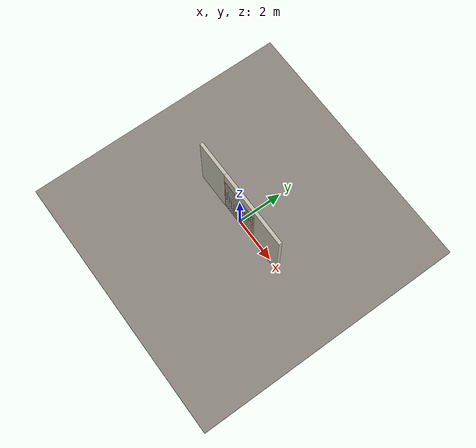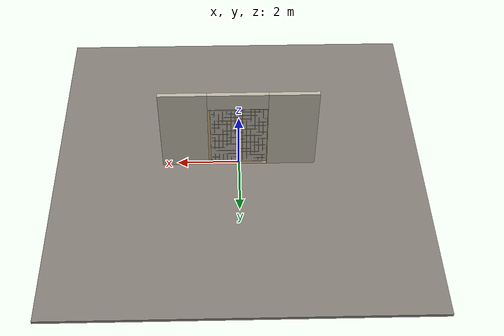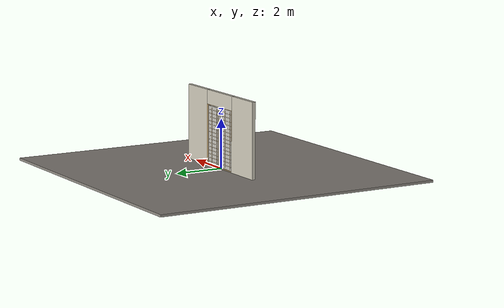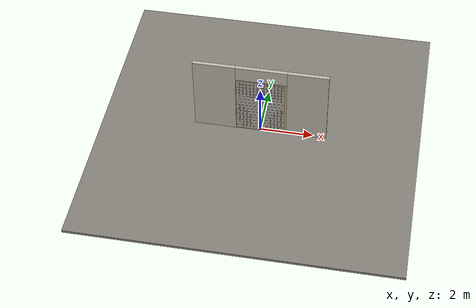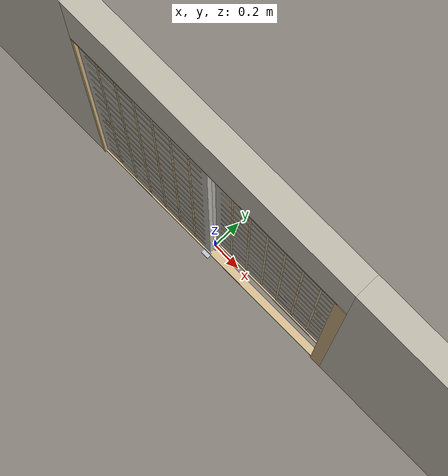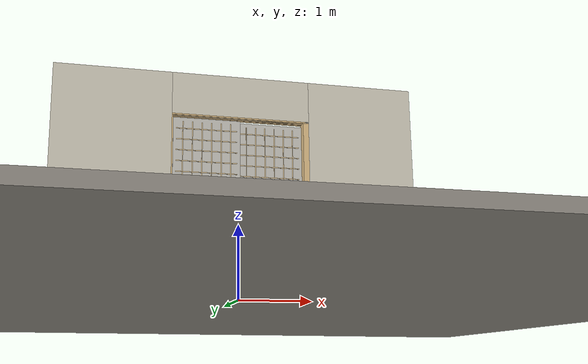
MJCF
<?xml version="1.0" ?>
<mujoco model="db0401_sliding_bypass_simple">
  <compiler angle="radian" meshdir="../../hardware" texturedir="../../textures" autolimits="true" inertiafromgeom="false"/>
  <option timestep="0.002" integrator="implicitfast" cone="elliptic" impratio="10" noslip_iterations="3">
    <flag multiccd="enable"/>
  </option>
  <size memory="16M"/>
  <default>
    <geom condim="4" solref="0.005 1" solimp="0.95 0.99 0.001"/>
    <joint solreflimit="0.005 1" solimplimit="0.95 0.99 0.001"/>
    <tendon solreflimit="0.005 1"/>
    <equality solref="0.002 1"/>
  </default>
  <visual>
    <headlight ambient="0.4 0.4 0.4" diffuse="0.7 0.7 0.7" specular="0.2 0.2 0.2"/>
    <quality shadowsize="4096"/>
    <map znear="0.01" zfar="60"/>
  </visual>
  <asset>
    <material name="mat_floor" rgba="0.55 0.53 0.5 1" specular="0.2" shininess="0.15" reflectance="0"/>
    <material name="mat_wall" rgba="0.78 0.76 0.7 1" specular="0.2" shininess="0.1" reflectance="0"/>
    <material name="mat_frame" rgba="0.82 0.7 0.5 1" specular="0.2" shininess="0.45" reflectance="0"/>
    <material name="mat_track" rgba="0.8 0.81 0.83 1" specular="0.8" shininess="0.6" reflectance="0.4"/>
    <material name="mat_shikii" rgba="0.88 0.78 0.6 1" specular="0.2" shininess="0.4" reflectance="0"/>
    <material name="mat_leaf_0" rgba="0.74 0.73 0.7 1" specular="0.2" shininess="0.1" reflectance="0"/>
    <material name="mat_kumiko" rgba="0.88 0.78 0.6 1" specular="0.2" shininess="0.4" reflectance="0"/>
    <material name="mat_roller" rgba="0.65 0.66 0.68 1" specular="0.74" shininess="0.5" reflectance="0.36"/>
    <material name="mat_op_hinoki" rgba="0.88 0.78 0.6 1" specular="0.2" shininess="0.4" reflectance="0"/>
    <material name="mat_leaf_1" rgba="0.74 0.73 0.7 1" specular="0.2" shininess="0.1" reflectance="0"/>
    <material name="mat_hook" rgba="0.75 0.76 0.77 1" specular="0.8" shininess="0.65" reflectance="0.4"/>
    <texture name="skybox" type="skybox" builtin="gradient" rgb1="0.6 0.7 0.85" rgb2="0.9 0.92 0.95" width="256" height="256"/>
  </asset>
  <worldbody>
    <light name="sun" pos="1.5 -2.5 4" dir="-0.3 0.5 -0.8" directional="true" diffuse="0.8 0.8 0.8" specular="0.3 0.3 0.3" castshadow="true"/>
    <light name="fill" pos="-1.5 2.5 3" dir="0.3 -0.5 -0.7" directional="true" diffuse="0.35 0.35 0.4" castshadow="false"/>
    <camera name="robot_view" pos="0 -2.93125 2.05075" xyaxes="1 0 0 0 0.26963 0.962964" fovy="52"/>
    <camera name="far_view" pos="0 2.93125 2.05075" xyaxes="-1 0 0 0 -0.26963 0.962964" fovy="52"/>
    <camera name="iso" pos="2.22775 -2.46225 2.51975" xyaxes="0.741536 0.670913 0 -0.242917 0.268487 0.932151" fovy="46"/>
    <camera name="detail_handle" pos="-0.631 -0.855 1.28" xyaxes="0.97561 0.219512 0 -0.070934 0.315262 0.94635" fovy="38"/>
    <geom name="floor" type="box" size="6 6 0.05" pos="0 0 -0.05" material="mat_floor" group="0" contype="1" conaffinity="1" friction="0.8 0.005 0.0001" density="2400"/>
    <geom name="wall_left" type="box" size="0.7885 0.0725 1.53" pos="-1.7115 0 1.53" material="mat_wall" group="0" contype="1" conaffinity="1" friction="0.6 0.005 0.0001" density="800"/>
    <geom name="wall_right" type="box" size="0.7585 0.0725 1.53" pos="1.7415 0 1.53" material="mat_wall" group="0" contype="1" conaffinity="1" friction="0.6 0.005 0.0001" density="800"/>
    <geom name="wall_header" type="box" size="0.953 0.0725 0.2905" pos="0.03 0 2.7695" material="mat_wall" group="0" contype="1" conaffinity="1" friction="0.6 0.005 0.0001" density="800"/>
    <geom name="jamb_l" type="box" size="0.0095 0.0725 1.23" pos="-0.9135 0 1.23" material="mat_frame" group="0" contype="1" conaffinity="1" friction="0.6 0.005 0.0001" density="300"/>
    <geom name="jamb_head" type="box" size="0.923 0.0725 0.0095" pos="0 0 2.4695" material="mat_frame" group="0" contype="1" conaffinity="1" friction="0.6 0.005 0.0001" density="300"/>
    <geom name="leaf_0_shikii" type="box" size="0.949 0.025 0.012" pos="-0.002 -0.04 0.012" material="mat_shikii" group="0" contype="1" conaffinity="1" friction="0.6 0.005 0.0001" density="2700"/>
    <geom name="leaf_0_kamoi" type="box" size="0.949 0.025 0.03" pos="-0.002 -0.04 2.49" material="mat_shikii" group="0" contype="1" conaffinity="1" friction="0.6 0.005 0.0001" density="410"/>
    <geom name="leaf_1_shikii" type="box" size="0.949 0.025 0.012" pos="0.002 0.04 0.012" material="mat_shikii" group="0" contype="1" conaffinity="1" friction="0.6 0.005 0.0001" density="2700"/>
    <geom name="leaf_1_kamoi" type="box" size="0.949 0.025 0.03" pos="0.002 0.04 2.49" material="mat_shikii" group="0" contype="1" conaffinity="1" friction="0.6 0.005 0.0001" density="410"/>
    <geom name="leaf_0_floor_guide_0_n" type="box" size="0.028 0.004 0.0175" pos="-0.002 -0.06 0.0175" material="mat_track" group="0" contype="1" conaffinity="1" friction="0.6 0.005 0.0001" density="7850"/>
    <geom name="leaf_0_floor_guide_0_n_foot" type="box" size="0.028 0.018 0.002" pos="-0.002 -0.074 0.002" material="mat_track" group="0" contype="1" conaffinity="1" friction="0.6 0.005 0.0001" density="7850"/>
    <geom name="leaf_0_floor_guide_0_p" type="box" size="0.028 0.004 0.0175" pos="-0.002 -0.02 0.0175" material="mat_track" group="0" contype="1" conaffinity="1" friction="0.6 0.005 0.0001" density="7850"/>
    <geom name="leaf_0_floor_guide_0_p_foot" type="box" size="0.028 0.018 0.002" pos="-0.002 -0.006 0.002" material="mat_track" group="0" contype="1" conaffinity="1" friction="0.6 0.005 0.0001" density="7850"/>
    <geom name="leaf_1_floor_guide_0_n" type="box" size="0.028 0.004 0.0175" pos="0.002 0.02 0.0175" material="mat_track" group="0" contype="1" conaffinity="1" friction="0.6 0.005 0.0001" density="7850"/>
    <geom name="leaf_1_floor_guide_0_n_foot" type="box" size="0.028 0.018 0.002" pos="0.002 0.006 0.002" material="mat_track" group="0" contype="1" conaffinity="1" friction="0.6 0.005 0.0001" density="7850"/>
    <geom name="leaf_1_floor_guide_0_p" type="box" size="0.028 0.004 0.0175" pos="0.002 0.06 0.0175" material="mat_track" group="0" contype="1" conaffinity="1" friction="0.6 0.005 0.0001" density="7850"/>
    <geom name="leaf_1_floor_guide_0_p_foot" type="box" size="0.028 0.018 0.002" pos="0.002 0.074 0.002" material="mat_track" group="0" contype="1" conaffinity="1" friction="0.6 0.005 0.0001" density="7850"/>
    <geom name="jamb_latch_0" type="box" size="0.0395 0.0725 1.23" pos="0.9435 0 1.23" material="mat_frame" group="0" contype="1" conaffinity="1" friction="0.6 0.005 0.0001" density="300"/>
    <site name="approach_point" pos="0 -1.5 0" quat="1 0 0 0" size="0.05" rgba="0.2 0.9 0.2 0.5" group="4"/>
    <site name="goal_point" pos="0 1.5 0" quat="1 0 0 0" size="0.05" rgba="0.2 0.9 0.2 0.5" group="4"/>
    <site name="door_plane_center" pos="0 0 1.23" quat="1 0 0 0" size="0.02" rgba="0.2 0.9 0.2 0.5" group="4"/>
    <body name="leaf_0" pos="-0.444 -0.04 0">
      <inertial pos="-0.000084 -0.000004 1.226948" mass="10.825061" quat="0.500016 -0.500007 -0.499994 -0.499983" diaginertia="0.754398026 5.195246272 5.948019254"/>
      <joint name="leaf_0_slide" type="slide" axis="1 0 0" limited="true" range="0 0.868" damping="2.542003" frictionloss="12.756562" armature="0.5"/>
      <geom name="leaf_0_slab" type="box" size="0.457 0.015 1.2" pos="0 0 1.227" material="mat_leaf_0" group="0" contype="1" conaffinity="1" friction="0.3 0.005 0.0001" density="1"/>
      <geom name="leaf_0_kumiko_v1" type="box" size="0.006 0.017 1.15" pos="-0.326429 0 1.227" material="mat_kumiko" group="1" contype="0" conaffinity="0" density="1"/>
      <geom name="leaf_0_kumiko_v2" type="box" size="0.006 0.017 1.15" pos="-0.195857 0 1.227" material="mat_kumiko" group="1" contype="0" conaffinity="0" density="1"/>
      <geom name="leaf_0_kumiko_v3" type="box" size="0.006 0.017 1.15" pos="-0.065286 0 1.227" material="mat_kumiko" group="1" contype="0" conaffinity="0" density="1"/>
      <geom name="leaf_0_kumiko_v4" type="box" size="0.006 0.017 1.15" pos="0.065286 0 1.227" material="mat_kumiko" group="1" contype="0" conaffinity="0" density="1"/>
      <geom name="leaf_0_kumiko_v5" type="box" size="0.006 0.017 1.15" pos="0.195857 0 1.227" material="mat_kumiko" group="1" contype="0" conaffinity="0" density="1"/>
      <geom name="leaf_0_kumiko_v6" type="box" size="0.006 0.017 1.15" pos="0.326429 0 1.227" material="mat_kumiko" group="1" contype="0" conaffinity="0" density="1"/>
      <geom name="leaf_0_kumiko_h1" type="box" size="0.417 0.017 0.006" pos="0 0 0.177" material="mat_kumiko" group="1" contype="0" conaffinity="0" density="1"/>
      <geom name="leaf_0_kumiko_h2" type="box" size="0.417 0.017 0.006" pos="0 0 0.327" material="mat_kumiko" group="1" contype="0" conaffinity="0" density="1"/>
      <geom name="leaf_0_kumiko_h3" type="box" size="0.417 0.017 0.006" pos="0 0 0.477" material="mat_kumiko" group="1" contype="0" conaffinity="0" density="1"/>
      <geom name="leaf_0_kumiko_h4" type="box" size="0.417 0.017 0.006" pos="0 0 0.627" material="mat_kumiko" group="1" contype="0" conaffinity="0" density="1"/>
      <geom name="leaf_0_kumiko_h5" type="box" size="0.417 0.017 0.006" pos="0 0 0.777" material="mat_kumiko" group="1" contype="0" conaffinity="0" density="1"/>
      <geom name="leaf_0_kumiko_h6" type="box" size="0.417 0.017 0.006" pos="0 0 0.927" material="mat_kumiko" group="1" contype="0" conaffinity="0" density="1"/>
      <geom name="leaf_0_kumiko_h7" type="box" size="0.417 0.017 0.006" pos="0 0 1.077" material="mat_kumiko" group="1" contype="0" conaffinity="0" density="1"/>
      <geom name="leaf_0_kumiko_h8" type="box" size="0.417 0.017 0.006" pos="0 0 1.227" material="mat_kumiko" group="1" contype="0" conaffinity="0" density="1"/>
      <geom name="leaf_0_kumiko_h9" type="box" size="0.417 0.017 0.006" pos="0 0 1.377" material="mat_kumiko" group="1" contype="0" conaffinity="0" density="1"/>
      <geom name="leaf_0_kumiko_h10" type="box" size="0.417 0.017 0.006" pos="0 0 1.527" material="mat_kumiko" group="1" contype="0" conaffinity="0" density="1"/>
      <geom name="leaf_0_kumiko_h11" type="box" size="0.417 0.017 0.006" pos="0 0 1.677" material="mat_kumiko" group="1" contype="0" conaffinity="0" density="1"/>
      <geom name="leaf_0_kumiko_h12" type="box" size="0.417 0.017 0.006" pos="0 0 1.827" material="mat_kumiko" group="1" contype="0" conaffinity="0" density="1"/>
      <geom name="leaf_0_kumiko_h13" type="box" size="0.417 0.017 0.006" pos="0 0 1.977" material="mat_kumiko" group="1" contype="0" conaffinity="0" density="1"/>
      <geom name="leaf_0_kumiko_h14" type="box" size="0.417 0.017 0.006" pos="0 0 2.127" material="mat_kumiko" group="1" contype="0" conaffinity="0" density="1"/>
      <geom name="leaf_0_kumiko_h15" type="box" size="0.417 0.017 0.006" pos="0 0 2.277" material="mat_kumiko" group="1" contype="0" conaffinity="0" density="1"/>
      <geom name="leaf_0_pull_n" type="box" size="0.015 0.0005 0.04" pos="-0.367 -0.0155 1" material="mat_op_hinoki" group="1" contype="0" conaffinity="0" density="1000"/>
      <site name="leaf_0_pull_grip_n" pos="-0.367 -0.015 1" quat="1 0 0 0" size="0.012" rgba="0.2 0.9 0.2 0.5" group="4"/>
      <site name="leaf_0_edge_mid" pos="-0.457 0 1.227" quat="1 0 0 0" size="0.02" rgba="0.2 0.9 0.2 0.5" group="4"/>
    </body>
    <body name="leaf_1" pos="0.444 0.04 0">
      <inertial pos="0.000084 -0.000004 1.226948" mass="10.825061" quat="-0.499983 0.499994 0.500007 0.500016" diaginertia="0.754398026 5.195246272 5.948019254"/>
      <joint name="leaf_1_slide" type="slide" axis="-1 0 0" limited="true" range="0 0.868" damping="2.542003" frictionloss="12.756562" armature="0.5"/>
      <geom name="leaf_1_slab" type="box" size="0.457 0.015 1.2" pos="0 0 1.227" material="mat_leaf_1" group="0" contype="1" conaffinity="1" friction="0.3 0.005 0.0001" density="1"/>
      <geom name="leaf_1_kumiko_v1" type="box" size="0.006 0.017 1.15" pos="-0.326429 0 1.227" material="mat_kumiko" group="1" contype="0" conaffinity="0" density="1"/>
      <geom name="leaf_1_kumiko_v2" type="box" size="0.006 0.017 1.15" pos="-0.195857 0 1.227" material="mat_kumiko" group="1" contype="0" conaffinity="0" density="1"/>
      <geom name="leaf_1_kumiko_v3" type="box" size="0.006 0.017 1.15" pos="-0.065286 0 1.227" material="mat_kumiko" group="1" contype="0" conaffinity="0" density="1"/>
      <geom name="leaf_1_kumiko_v4" type="box" size="0.006 0.017 1.15" pos="0.065286 0 1.227" material="mat_kumiko" group="1" contype="0" conaffinity="0" density="1"/>
      <geom name="leaf_1_kumiko_v5" type="box" size="0.006 0.017 1.15" pos="0.195857 0 1.227" material="mat_kumiko" group="1" contype="0" conaffinity="0" density="1"/>
      <geom name="leaf_1_kumiko_v6" type="box" size="0.006 0.017 1.15" pos="0.326429 0 1.227" material="mat_kumiko" group="1" contype="0" conaffinity="0" density="1"/>
      <geom name="leaf_1_kumiko_h1" type="box" size="0.417 0.017 0.006" pos="0 0 0.177" material="mat_kumiko" group="1" contype="0" conaffinity="0" density="1"/>
      <geom name="leaf_1_kumiko_h2" type="box" size="0.417 0.017 0.006" pos="0 0 0.327" material="mat_kumiko" group="1" contype="0" conaffinity="0" density="1"/>
      <geom name="leaf_1_kumiko_h3" type="box" size="0.417 0.017 0.006" pos="0 0 0.477" material="mat_kumiko" group="1" contype="0" conaffinity="0" density="1"/>
      <geom name="leaf_1_kumiko_h4" type="box" size="0.417 0.017 0.006" pos="0 0 0.627" material="mat_kumiko" group="1" contype="0" conaffinity="0" density="1"/>
      <geom name="leaf_1_kumiko_h5" type="box" size="0.417 0.017 0.006" pos="0 0 0.777" material="mat_kumiko" group="1" contype="0" conaffinity="0" density="1"/>
      <geom name="leaf_1_kumiko_h6" type="box" size="0.417 0.017 0.006" pos="0 0 0.927" material="mat_kumiko" group="1" contype="0" conaffinity="0" density="1"/>
      <geom name="leaf_1_kumiko_h7" type="box" size="0.417 0.017 0.006" pos="0 0 1.077" material="mat_kumiko" group="1" contype="0" conaffinity="0" density="1"/>
      <geom name="leaf_1_kumiko_h8" type="box" size="0.417 0.017 0.006" pos="0 0 1.227" material="mat_kumiko" group="1" contype="0" conaffinity="0" density="1"/>
      <geom name="leaf_1_kumiko_h9" type="box" size="0.417 0.017 0.006" pos="0 0 1.377" material="mat_kumiko" group="1" contype="0" conaffinity="0" density="1"/>
      <geom name="leaf_1_kumiko_h10" type="box" size="0.417 0.017 0.006" pos="0 0 1.527" material="mat_kumiko" group="1" contype="0" conaffinity="0" density="1"/>
      <geom name="leaf_1_kumiko_h11" type="box" size="0.417 0.017 0.006" pos="0 0 1.677" material="mat_kumiko" group="1" contype="0" conaffinity="0" density="1"/>
      <geom name="leaf_1_kumiko_h12" type="box" size="0.417 0.017 0.006" pos="0 0 1.827" material="mat_kumiko" group="1" contype="0" conaffinity="0" density="1"/>
      <geom name="leaf_1_kumiko_h13" type="box" size="0.417 0.017 0.006" pos="0 0 1.977" material="mat_kumiko" group="1" contype="0" conaffinity="0" density="1"/>
      <geom name="leaf_1_kumiko_h14" type="box" size="0.417 0.017 0.006" pos="0 0 2.127" material="mat_kumiko" group="1" contype="0" conaffinity="0" density="1"/>
      <geom name="leaf_1_kumiko_h15" type="box" size="0.417 0.017 0.006" pos="0 0 2.277" material="mat_kumiko" group="1" contype="0" conaffinity="0" density="1"/>
      <geom name="leaf_1_pull_n" type="box" size="0.015 0.0005 0.04" pos="0.367 -0.0155 1" material="mat_op_hinoki" group="1" contype="0" conaffinity="0" density="1000"/>
      <site name="leaf_1_pull_grip_n" pos="0.367 -0.015 1" quat="1 0 0 0" size="0.012" rgba="0.2 0.9 0.2 0.5" group="4"/>
      <site name="leaf_1_edge_mid" pos="0.457 0 1.227" quat="1 0 0 0" size="0.02" rgba="0.2 0.9 0.2 0.5" group="4"/>
    </body>
  </worldbody>
  <sensor>
    <jointpos name="leaf_0_slide_pos" joint="leaf_0_slide"/>
    <jointvel name="leaf_0_slide_vel" joint="leaf_0_slide"/>
    <jointpos name="leaf_1_slide_pos" joint="leaf_1_slide"/>
    <jointvel name="leaf_1_slide_vel" joint="leaf_1_slide"/>
  </sensor>
</mujoco>
